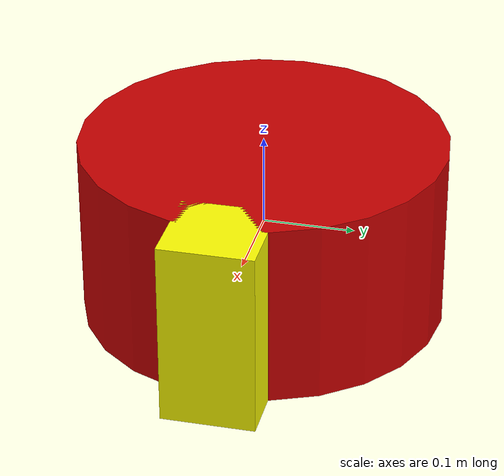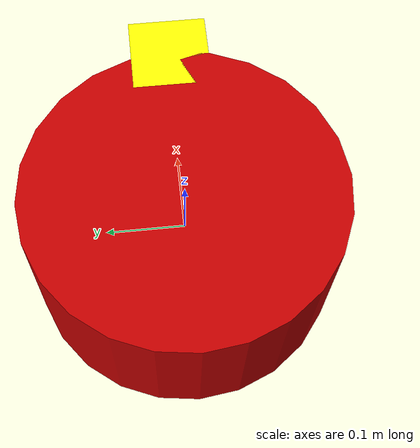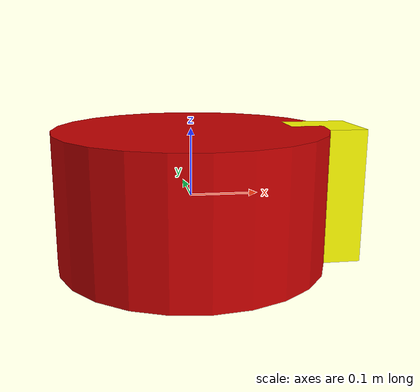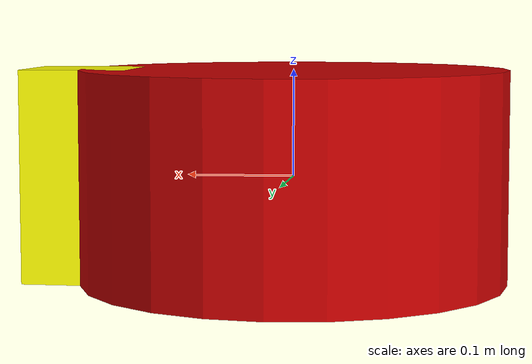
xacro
<?xml version="1.0"?>
<robot xmlns:xacro="http://www.ros.org/wiki/xacro" name="patroller">
<xacro:arg name="ws" default="robot"/>
<xacro:property name="ws" value="$(arg ws)"/>
  <link name="${ws}/base_link">
    <visual name="body">
      <geometry>
	<cylinder length="0.2" radius="0.2"/>
      </geometry>
      <material name="red">
	<color rgba="200 0 0 1"/>
	</material>
    </visual>
    <visual name="nose">
	<origin xyz="0.2 0 0" rpy="0 0 0"/>
	<geometry>
		<box size="0.1 0.1 0.2"/>
	</geometry>
	<material name="little_red">
		<color rgba="1 1 0 1"/>
	</material>
    </visual>
  </link>
</robot>
